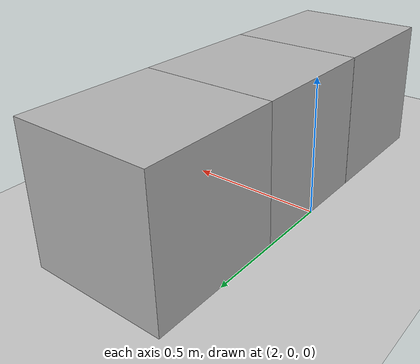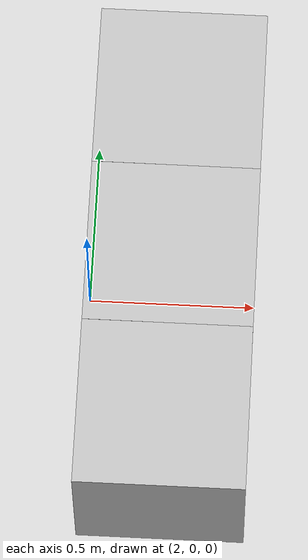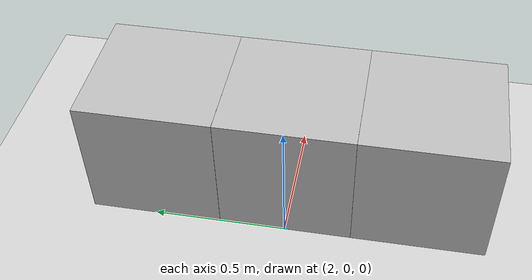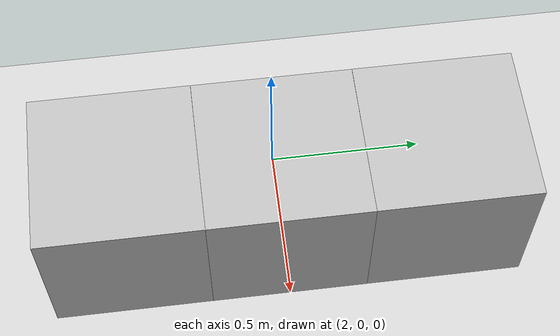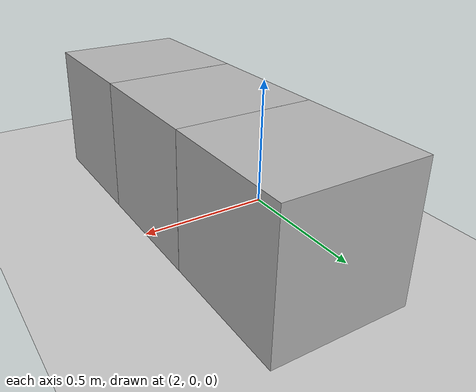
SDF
<?xml version="1.0" ?>
<sdf version="1.6">
  <world name="empty">
    <physics name="1ms" type="ignored">
      <max_step_size>0.001</max_step_size>
      <real_time_factor>1.0</real_time_factor>
    </physics>

    <plugin filename="ignition-gazebo-contact-system" name="gz::sim::systems::Contact" />
    <plugin filename="ignition-gazebo-imu-system" name="gz::sim::systems::Imu" />
    <plugin filename="ignition-gazebo-physics-system" name="gz::sim::systems::Physics" />
    <plugin filename="ignition-gazebo-scene-broadcaster-system"
      name="gz::sim::systems::SceneBroadcaster" />
    <plugin filename="ignition-gazebo-sensors-system" name="gz::sim::systems::Sensors" />
    <plugin filename="ignition-gazebo-user-commands-system" name="gz::sim::systems::UserCommands" />

    <spherical_coordinates>
      <surface_model>EARTH_WGS84</surface_model>
      <world_frame_orientation>ENU</world_frame_orientation>
      <latitude_deg>50.088384</latitude_deg>
      <longitude_deg>19.939128</longitude_deg>
      <elevation>0</elevation>
      <heading_deg>0</heading_deg>
    </spherical_coordinates>

    <light type="directional" name="sun">
      <cast_shadows>true</cast_shadows>
      <pose>0 0 10 0 0 0</pose>
      <diffuse>0.8 0.8 0.8 1</diffuse>
      <specular>0.2 0.2 0.2 1</specular>
      <attenuation>
        <range>1000</range>
        <constant>0.9</constant>
        <linear>0.01</linear>
        <quadratic>0.001</quadratic>
      </attenuation>
      <direction>-0.5 0.1 -0.9</direction>
    </light>

    <model name="ground_plane">
      <static>true</static>
      <link name="link">
        <collision name="collision">
          <geometry>
            <plane>
              <normal>0 0 1</normal>
              <size>100 100</size>
            </plane>
          </geometry>
        </collision>
        <visual name="visual">
          <geometry>
            <plane>
              <normal>0 0 1</normal>
              <size>100 100</size>
            </plane>
          </geometry>
          <material>
            <ambient>0.8 0.8 0.8 1</ambient>
            <diffuse>0.8 0.8 0.8 1</diffuse>
            <specular>0.8 0.8 0.8 1</specular>
          </material>
        </visual>
      </link>
    </model>

    <!-- Static, no collision — robot can pass through -->
    <model name="box_1">
      <static>true</static>
      <pose>2.25 0 0.25 0 0 0</pose>
      <link name="link">
        <visual name="aruco_box_mesh">
          <geometry>
            <mesh>
              <uri>model://aruco_box/model.dae</uri>
              <scale>0.25 0.25 0.25</scale>
            </mesh>
          </geometry>
        </visual>
      </link>
    </model>

    <model name="box_2">
      <static>true</static>
      <pose>2.25 -0.5 0.25 0 0 -1.57</pose>
      <link name="link">
        <visual name="aruco_box_mesh">
          <geometry>
            <mesh>
              <uri>model://aruco_box/model.dae</uri>
              <scale>0.25 0.25 0.25</scale>
            </mesh>
          </geometry>
        </visual>
      </link>
    </model>

    <model name="box_3">
      <static>true</static>
      <pose>2.25 0.5 0.25 0 0 1.57</pose>
      <link name="link">
        <visual name="aruco_box_mesh">
          <geometry>
            <mesh>
              <uri>model://aruco_box/model.dae</uri>
              <scale>0.25 0.25 0.25</scale>
            </mesh>
          </geometry>
        </visual>
      </link>
    </model>

  </world>
</sdf>
